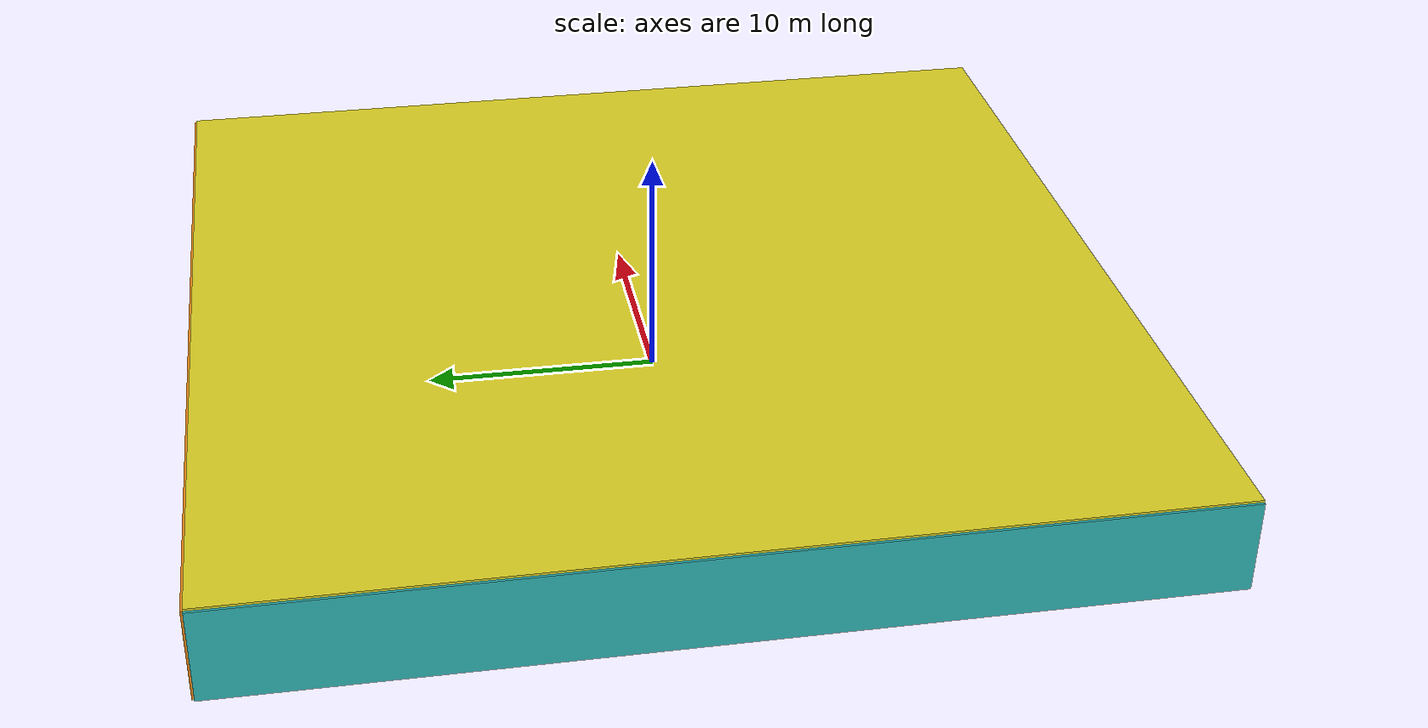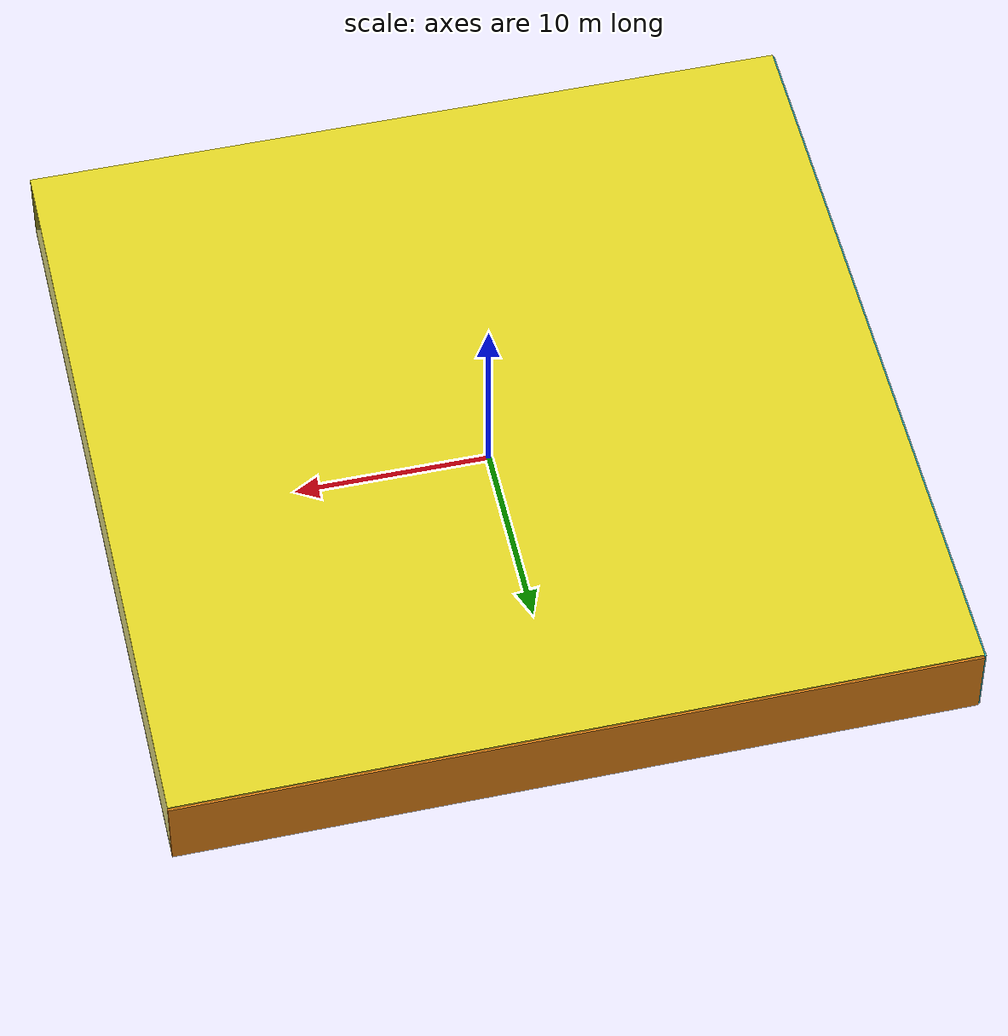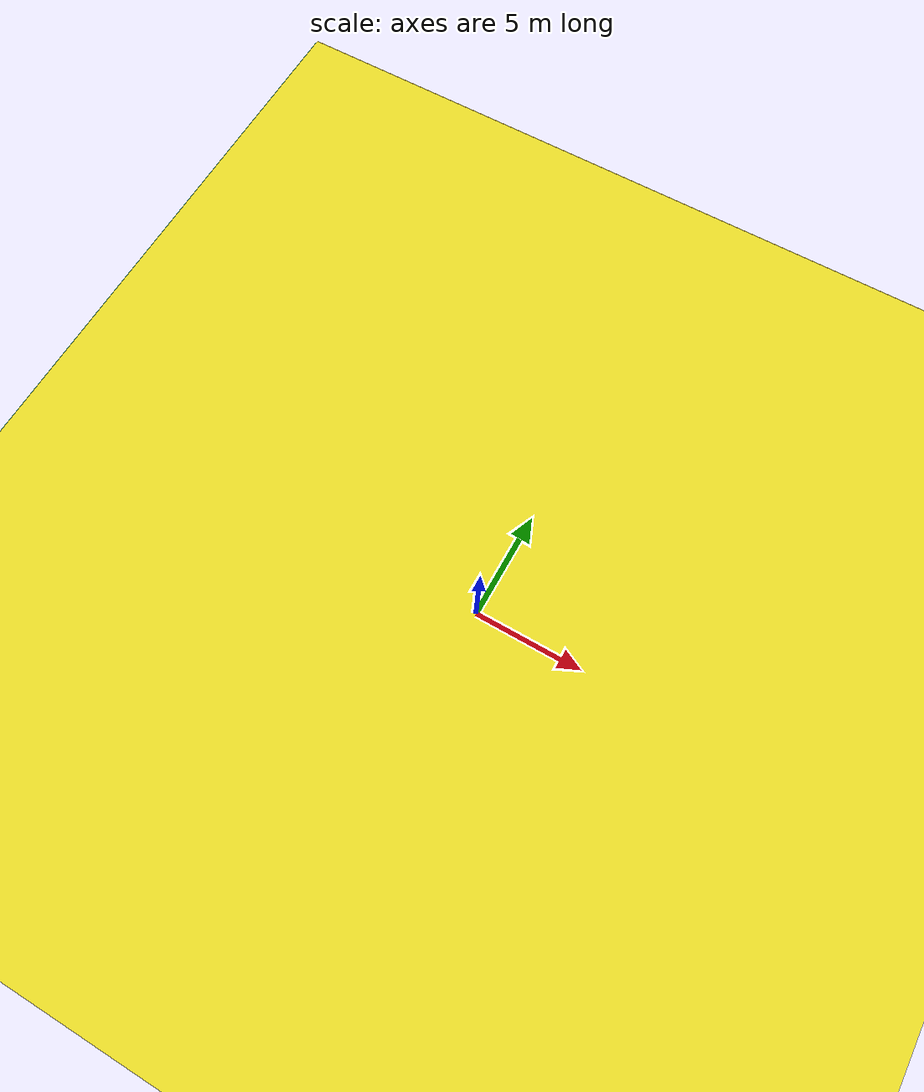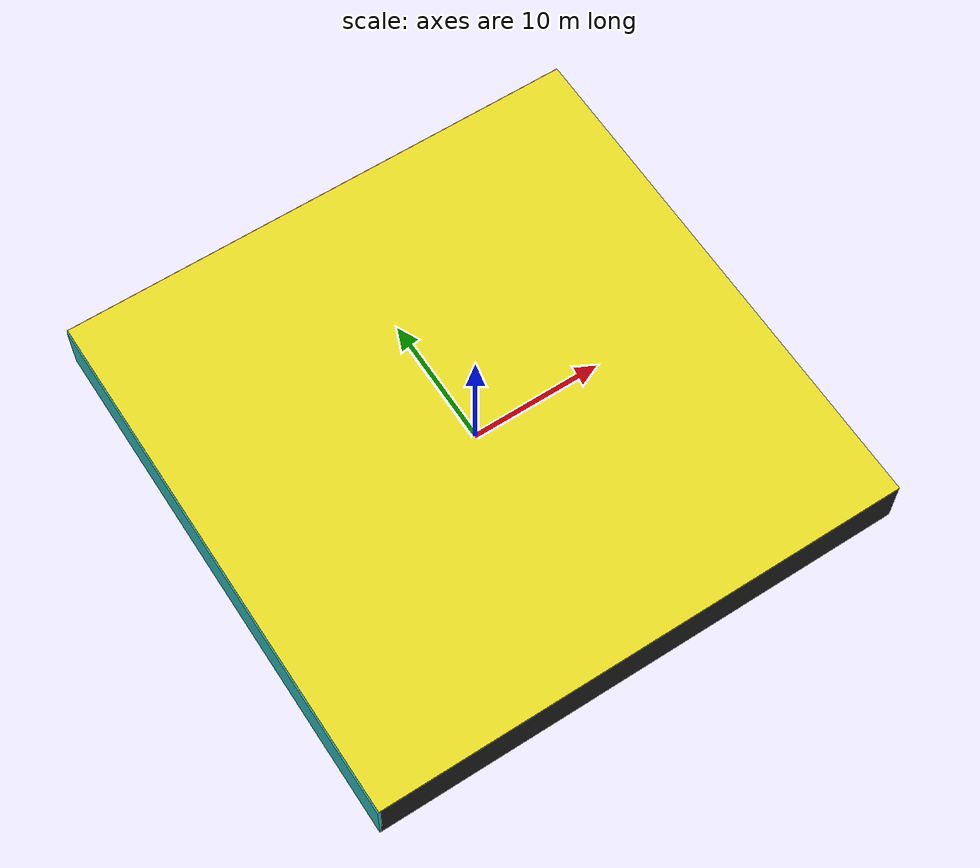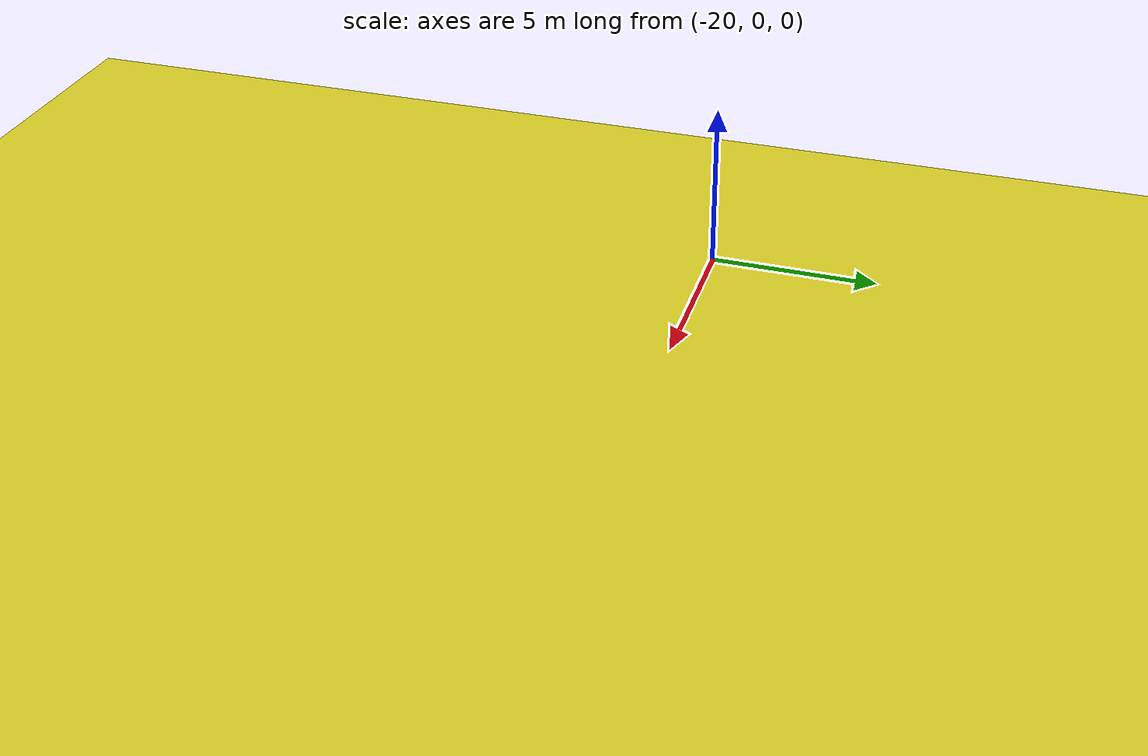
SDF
<sdf version="1.4">
 <world name="default">
  <physics type="ode">
   <max_step_size>0.001</max_step_size>
   <real_time_factor>1</real_time_factor>
   <real_time_update_rate>1000</real_time_update_rate>
   <gravity>0 0 -9.8</gravity>
  </physics>
  <scene><ambient>0.4 0.4 0.4 1</ambient><background>0.7 0.7 0.7 1</background><shadows>1</shadows></scene>
  <model name="Surrounding">
   <static>1</static>
   <link name="Ceiling">
    <collision name="Ceiling_Collision"><geometry><box><size>40 40 0.1</size></box></geometry></collision>
    <visual name="Ceiling_Visual">
     <geometry><box><size>40 40 0.1</size></box></geometry>
     <material>
      <script><uri>file://media/materials/scripts/gazebo.material</uri><name>Gazebo/Yellow</name></script>
     </material>
    </visual>
    <pose>0 0 4.05 0 0 0</pose>
   </link>
   <link name="Wall_South">
    <collision name="Wall_South_Collision">
     <geometry><box><size>40 0 4</size></box></geometry>
     <pose>0 0 2 0 -0 0</pose>
    </collision>
    <visual name="Wall_South_Visual">
     <pose>0 0 2 0 -0 0</pose>
     <geometry><box><size>40 0 4</size></box></geometry>
     <material>
      <script><uri>file://media/materials/scripts/gazebo.material</uri><name>Gazebo/Black</name></script>
     </material>
    </visual>
    <velocity_decay><linear>0</linear><angular>0</angular></velocity_decay>
    <pose>0 -20 0 0 -0 0</pose>
   </link>
   <link name="Wall_East">
    <collision name="Wall_21_Collision">
     <geometry><box><size>40 0 4</size></box></geometry>
     <pose>0 0 2 0 -0 0</pose>
    </collision>
    <visual name="Wall_21_Visual">
     <pose>0 0 2 0 -0 0</pose>
     <geometry><box><size>40 0 4</size></box></geometry>
     <material>
      <script>
       <uri>file://media/materials/scripts/gazebo.material</uri>
       <name>Gazebo/YellowTransparent</name>
      </script>
     </material>
    </visual>
    <velocity_decay><linear>0</linear><angular>0</angular></velocity_decay>
    <pose>20 0 0 0 -0 1.5708</pose>
   </link>
   <link name="Wall_North">
    <collision name="Wall_22_Collision">
     <geometry><box><size>40 0.2 4</size></box></geometry>
     <pose>0 0 2 0 -0 0</pose>
    </collision>
    <visual name="Wall_22_Visual">
     <pose>0 0 2 0 -0 0</pose>
     <geometry><box><size>40 0.2 4</size></box></geometry>
     <material>
      <script><uri>file://media/materials/scripts/gazebo.material</uri><name>Gazebo/Orange</name></script>
     </material>
    </visual>
    <velocity_decay><linear>0</linear><angular>0</angular></velocity_decay>
    <pose>0 20 0 0 -0 0</pose>
   </link>
   <link name="Wall_West">
    <collision name="Wall_23_Collision">
     <geometry><box><size>40 0.2 4</size></box></geometry>
     <pose>0 0 2 0 -0 0</pose>
    </collision>
    <visual name="Wall_23_Visual">
     <pose>0 0 2 0 -0 0</pose>
     <geometry><box><size>40 0.2 4</size></box></geometry>
     <material>
      <script><uri>file://media/materials/scripts/gazebo.material</uri><name>Gazebo/Turquoise</name></script>
     </material>
    </visual>
    <velocity_decay><linear>0</linear><angular>0</angular></velocity_decay>
    <pose>-20 0 0 0 0 -1.5708</pose>
   </link>
   <link name="Ground_link">
    <collision name="collision">
     <pose>0 0 .05 0 -0 0</pose>
     <geometry><box><size>40 40 0.1</size></box></geometry>
    </collision>
    <visual name="visual">
     <pose>0 0 .05 0 -0 0</pose>
     <geometry><box><size>40 40 0.1</size></box></geometry>
     <material>
      <script><uri>file://media/materials/scripts/gazebo.material</uri><name>Gazebo/GreyGradientSky</name></script>
     </material>
    </visual>
   </link>
   <static>1</static>
  </model>
  <spherical_coordinates>
   <surface_model>EARTH_WGS84</surface_model>
   <latitude_deg>0</latitude_deg>
   <longitude_deg>0</longitude_deg>
   <elevation>0</elevation>
   <heading_deg>0</heading_deg>
  </spherical_coordinates>
  <light name="lightball_0" type="diffuse">
   <diffuse>0.8 0.8 0.8 1</diffuse>
   <specular>0.2 0.2 0.2 1</specular>
   <attenuation>
    <range>100</range>
    <constant>0.7</constant>
    <linear>0.01</linear>
    <quadratic>0.001</quadratic>
   </attenuation>
   <direction>-0.5 0.1 -0.9</direction>
   <pose>-1.76444220645 -5.6534538311 0.617477408611 0 0 0</pose>
  </light>
  <light name="lightball_1" type="diffuse">
   <diffuse>0.8 0.8 0.8 1</diffuse>
   <specular>0.2 0.2 0.2 1</specular>
   <attenuation>
    <range>100</range>
    <constant>0.7</constant>
    <linear>0.01</linear>
    <quadratic>0.001</quadratic>
   </attenuation>
   <direction>-0.5 0.1 -0.9</direction>
   <pose>7.96330196982 -13.5430854611 3.33004421948 0 0 0</pose>
  </light>
  <light name="lightball_2" type="diffuse">
   <diffuse>0.8 0.8 0.8 1</diffuse>
   <specular>0.2 0.2 0.2 1</specular>
   <attenuation>
    <range>100</range>
    <constant>0.7</constant>
    <linear>0.01</linear>
    <quadratic>0.001</quadratic>
   </attenuation>
   <direction>-0.5 0.1 -0.9</direction>
   <pose>-18.5950862273 8.59395775394 3.04837352969 0 0 0</pose>
  </light>
  <light name="lightball_3" type="diffuse">
   <diffuse>0.8 0.8 0.8 1</diffuse>
   <specular>0.2 0.2 0.2 1</specular>
   <attenuation>
    <range>100</range>
    <constant>0.7</constant>
    <linear>0.01</linear>
    <quadratic>0.001</quadratic>
   </attenuation>
   <direction>-0.5 0.1 -0.9</direction>
   <pose>2.42578583849 -13.9259733228 1.13814075323 0 0 0</pose>
  </light>
  <light name="lightball_4" type="diffuse">
   <diffuse>0.8 0.8 0.8 1</diffuse>
   <specular>0.2 0.2 0.2 1</specular>
   <attenuation>
    <range>100</range>
    <constant>0.7</constant>
    <linear>0.01</linear>
    <quadratic>0.001</quadratic>
   </attenuation>
   <direction>-0.5 0.1 -0.9</direction>
   <pose>5.19215248226 -13.0371339637 3.66442456601 0 0 0</pose>
  </light>
  <light name="lightball_5" type="diffuse">
   <diffuse>0.8 0.8 0.8 1</diffuse>
   <specular>0.2 0.2 0.2 1</specular>
   <attenuation>
    <range>100</range>
    <constant>0.7</constant>
    <linear>0.01</linear>
    <quadratic>0.001</quadratic>
   </attenuation>
   <direction>-0.5 0.1 -0.9</direction>
   <pose>4.41724789733 -7.87665741089 0.720610740067 0 0 0</pose>
  </light>
  <light name="lightball_6" type="diffuse">
   <diffuse>0.8 0.8 0.8 1</diffuse>
   <specular>0.2 0.2 0.2 1</specular>
   <attenuation>
    <range>100</range>
    <constant>0.7</constant>
    <linear>0.01</linear>
    <quadratic>0.001</quadratic>
   </attenuation>
   <direction>-0.5 0.1 -0.9</direction>
   <pose>-10.7188613968 -9.06521711699 1.51352633297 0 0 0</pose>
  </light>
  <light name="lightball_7" type="diffuse">
   <diffuse>0.8 0.8 0.8 1</diffuse>
   <specular>0.2 0.2 0.2 1</specular>
   <attenuation>
    <range>100</range>
    <constant>0.7</constant>
    <linear>0.01</linear>
    <quadratic>0.001</quadratic>
   </attenuation>
   <direction>-0.5 0.1 -0.9</direction>
   <pose>12.3358637552 15.8460079397 3.87821203685 0 0 0</pose>
  </light>
  <light name="lightball_8" type="diffuse">
   <diffuse>0.8 0.8 0.8 1</diffuse>
   <specular>0.2 0.2 0.2 1</specular>
   <attenuation>
    <range>100</range>
    <constant>0.7</constant>
    <linear>0.01</linear>
    <quadratic>0.001</quadratic>
   </attenuation>
   <direction>-0.5 0.1 -0.9</direction>
   <pose>-4.19892445091 -12.2770114038 2.36935515098 0 0 0</pose>
  </light>
  <light name="lightball_9" type="diffuse">
   <diffuse>0.8 0.8 0.8 1</diffuse>
   <specular>0.2 0.2 0.2 1</specular>
   <attenuation>
    <range>100</range>
    <constant>0.7</constant>
    <linear>0.01</linear>
    <quadratic>0.001</quadratic>
   </attenuation>
   <direction>-0.5 0.1 -0.9</direction>
   <pose>-14.6445313542 -1.12390002583 1.9028152791 0 0 0</pose>
  </light>
  <include><uri>model://cabinet</uri><pose>-18.0287422762 -8.01065716029 0 0 0 0.225970008092</pose></include>
  <include>
   <uri>model://construction_cone</uri>
   <pose>-16.6642688034 -5.62500041435 0 0 0 1.89924688813</pose>
  </include>
  <include>
   <uri>model://robocup_3Dsim_goal</uri>
   <pose>-16.8417801773 0.536723515995 0 0 0 2.94004110075</pose>
  </include>
  <include>
   <uri>model://robocup_3Dsim_goal</uri>
   <pose>-17.706255397 4.21239671462 0 0 0 0.289947293288</pose>
  </include>
  <include>
   <uri>model://construction_cone</uri>
   <pose>-16.7615797271 6.44776206847 0 0 0 0.436634998841</pose>
  </include>
  <include><uri>model://table</uri><pose>-18.4076057705 13.1726377684 0 0 0 2.95791076341</pose></include>
  <include>
   <uri>model://textured_shapes</uri>
   <pose>-13.5995750544 -6.33388521467 0 0 0 3.09789329989</pose>
  </include>
  <include>
   <uri>model://textured_shapes</uri>
   <pose>-15.5276856339 7.46373821721 0 0 0 2.36675378243</pose>
  </include>
  <include>
   <uri>model://textured_shapes</uri>
   <pose>-10.3176918295 -11.4655970536 0 0 0 0.493224738769</pose>
  </include>
  <include>
   <uri>model://construction_cone</uri>
   <pose>-12.3212110109 15.9286726718 0 0 0 2.74281107238</pose>
  </include>
  <include><uri>model://table</uri><pose>-8.56946313817 5.58104194911 0 0 0 2.67102088607</pose></include>
  <include><uri>model://table</uri><pose>-9.15080717757 8.48781593332 0 0 0 1.62831970172</pose></include>
  <include>
   <uri>model://textured_shapes</uri>
   <pose>-5.23374959962 -2.45349870434 0 0 0 1.9598602776</pose>
  </include>
  <include><uri>model://cabinet</uri><pose>-5.09663924109 8.75387440353 0 0 0 1.76356704062</pose></include>
  <include>
   <uri>model://robocup_3Dsim_goal</uri>
   <pose>-3.66427520237 -6.31462528178 0 0 0 2.44762565491</pose>
  </include>
  <include>
   <uri>model://textured_shapes</uri>
   <pose>0.340411774433 0.380586890389 0 0 0 1.93315608106</pose>
  </include>
  <include><uri>model://cabinet</uri><pose>0.744508417818 16.3741328513 0 0 0 0.508585862353</pose></include>
  <include>
   <uri>model://textured_shapes</uri>
   <pose>-0.418390356216 17.9646655679 0 0 0 0.930616825367</pose>
  </include>
  <include>
   <uri>model://construction_cone</uri>
   <pose>7.27903118977 -7.86790581204 0 0 0 2.63437811812</pose>
  </include>
  <include>
   <uri>model://robocup_3Dsim_goal</uri>
   <pose>7.1248178023 -3.26191326025 0 0 0 1.445003265</pose>
  </include>
  <include>
   <uri>model://robocup_3Dsim_goal</uri>
   <pose>6.2638310243 4.69493561309 0 0 0 0.929206491811</pose>
  </include>
  <include><uri>model://cabinet</uri><pose>10.4869636204 2.61501974512 0 0 0 1.36037210471</pose></include>
  <include>
   <uri>model://robocup_3Dsim_goal</uri>
   <pose>9.00935591694 18.2779720731 0 0 0 0.0432909405613</pose>
  </include>
  <include>
   <uri>model://construction_cone</uri>
   <pose>15.4259609595 10.2934334513 0 0 0 1.10355924111</pose>
  </include>
  <include><uri>model://table</uri><pose>15.1668452162 19.065088951 0 0 0 2.07443536751</pose></include>
 </world>
</sdf>

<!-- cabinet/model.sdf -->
<sdf version="1.5">
  <model name="cabinet">
    <static>true</static>
    <link name="cabinet_bottom_plate">
      <inertial>
        <pose>0 0 -1 0 0 0</pose>
        <inertia>
          <ixx>2.050000</ixx>
          <ixy>0</ixy>
          <ixz>0</ixz>
          <iyy>2.050000</iyy>
          <iyz>0</iyz>
          <izz>2.050000</izz>
        </inertia>
        <mass>25.000000</mass>
      </inertial>
      <collision name="cabinet_bottom_plate_geom">
        <pose>0 0 0.010000 0 0 0</pose>
        <geometry>
          <box>
            <size>0.450000 0.450000 0.020000</size>
          </box>
        </geometry>
      </collision>
      <visual name="cabinet_bottom_plate_geom_visual">
        <pose>0 0 0.010000 0 0 0</pose>
        <geometry>
          <box>
            <size>0.450000 0.450000 0.020000</size>
          </box>
        </geometry>
        <material>
          <script>
            <uri>model://media/materials/scripts/gazebo.material</uri>
            <name>Gazebo/Wood</name>
          </script>
        </material>
      </visual>
      <collision name="cabinet_bottom_plate_geom_cabinet_back_plate">
        <pose>0.235000 0 0.510000 0 0 0</pose>
        <geometry>
          <box>
            <size>0.020000 0.450000 1.020000</size>
          </box>
        </geometry>
      </collision>
      <visual name="cabinet_bottom_plate_geom_cabinet_back_plate_visual">
        <pose>0.235000 0 0.510000 0 0 0</pose>
        <geometry>
          <box>
            <size>0.020000 0.450000 1.020000</size>
          </box>
        </geometry>
        <material>
          <script>
            <uri>model://media/materials/scripts/gazebo.material</uri>
            <name>Gazebo/Wood</name>
          </script>
        </material>
      </visual>
      <collision name="cabinet_bottom_plate_geom_cabinet_left_plate">
        <pose>0 0.235000 0.510000 0 0 0</pose>
        <geometry>
          <box>
            <size>0.450000 0.020000 1.020000</size>
          </box>
        </geometry>
      </collision>
      <visual name="cabinet_bottom_plate_geom_cabinet_left_plate_visual">
        <pose>0 0.235000 0.510000 0 0 0</pose>
        <geometry>
          <box>
            <size>0.450000 0.020000 1.020000</size>
          </box>
        </geometry>
        <material>
          <script>
            <uri>model://media/materials/scripts/gazebo.material</uri>
            <name>Gazebo/Wood</name>
          </script>
        </material>
      </visual>
      <collision name="cabinet_bottom_plate_geom_cabinet_middle_plate">
        <pose>0 0 0.510000 0 0 0</pose>
        <geometry>
          <box>
            <size>0.450000 0.450000 0.020000</size>
          </box>
        </geometry>
      </collision>
      <visual name="cabinet_bottom_plate_geom_cabinet_middle_plate_visual">
        <pose>0 0 0.510000 0 0 0</pose>
        <geometry>
          <box>
            <size>0.450000 0.450000 0.020000</size>
          </box>
        </geometry>
        <material>
          <script>
            <uri>model://media/materials/scripts/gazebo.material</uri>
            <name>Gazebo/Wood</name>
          </script>
        </material>
      </visual>
      <collision name="cabinet_bottom_plate_geom_cabinet_right_plate">
        <pose>0 -0.235000 0.510000 0 0 0</pose>
        <geometry>
          <box>
            <size>0.450000 0.020000 1.020000</size>
          </box>
        </geometry>
      </collision>
      <visual name="cabinet_bottom_plate_geom_cabinet_right_plate_visual">
        <pose>0 -0.235000 0.510000 0 0 0</pose>
        <geometry>
          <box>
            <size>0.450000 0.020000 1.020000</size>
          </box>
        </geometry>
        <material>
          <script>
            <uri>model://media/materials/scripts/gazebo.material</uri>
            <name>Gazebo/Wood</name>
          </script>
        </material>
      </visual>
      <collision name="cabinet_bottom_plate_geom_cabinet_top_plate">
        <pose>0 0 1.010000 0 0 0</pose>
        <geometry>
          <box>
            <size>0.450000 0.450000 0.020000</size>
          </box>
        </geometry>
      </collision>
      <visual name="cabinet_bottom_plate_geom_cabinet_top_plate_visual">
        <pose>0 0 1.010000 0 0 0</pose>
        <geometry>
          <box>
            <size>0.450000 0.450000 0.020000</size>
          </box>
        </geometry>
        <material>
          <script>
            <uri>model://media/materials/scripts/gazebo.material</uri>
            <name>Gazebo/Wood</name>
          </script>
        </material>
      </visual>
    </link>
  </model>
</sdf>

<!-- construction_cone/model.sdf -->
<sdf version="1.5">
  <model name="Construction Cone">
    <link name="link">
      <collision name="collision">
        <geometry>
          <mesh>
            <scale>10 10 10</scale>
            <uri>file://isr-testbed/construction_cone/meshes/construction_cone.dae</uri>
          </mesh>
        </geometry>
      </collision>
      <visual name="visual">
        <geometry>
          <mesh>
            <scale>10 10 10</scale>
            <uri>file://isr-testbed/construction_cone/meshes/construction_cone.dae</uri>
          </mesh>
        </geometry>
      </visual>
    </link>
  </model>
</sdf>

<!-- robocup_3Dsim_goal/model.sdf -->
<sdf version="1.5">
  <model name="robocup_3d_goal">
    <static>true</static>
    <link name="left_post">
      <pose>0 1.05 0.45 0 0 0</pose>
      <collision name="collision">
        <geometry>
          <cylinder>
            <radius>0.05</radius>
            <length>0.9</length>
          </cylinder>
        </geometry>
      </collision>
      <visual name="visual">
        <geometry>
          <cylinder>
            <radius>0.05</radius>
            <length>0.9</length>
          </cylinder>
        </geometry>
        <material>
          <script>
            <uri>file://media/materials/scripts/gazebo.material</uri>
            <name>Gazebo/ZincYellow</name>
          </script>
        </material>
      </visual>
    </link>
    <link name="left_support_horiz_lower">
      <pose>0.30 1.05 0.01 0 0 0</pose>
      <collision name="collision">
        <geometry>
          <box>
            <size>0.50 0.02 0.02</size>
          </box>
        </geometry>
      </collision>
      <visual name="visual">
        <geometry>
          <box>
            <size>0.50 0.02 0.02</size>
          </box>
        </geometry>
        <material>
          <script>
            <uri>file://media/materials/scripts/gazebo.material</uri>
            <name>Gazebo/White</name>
          </script>
        </material>
      </visual>
    </link>
    <link name="left_support_horiz_upper">
      <pose>0.30 1.05 0.79 0 0 0</pose>
      <collision name="collision">
        <geometry>
          <box>
            <size>0.50 0.02 0.02</size>
          </box>
        </geometry>
      </collision>
      <visual name="visual">
        <geometry>
          <box>
            <size>0.50 0.02 0.02</size>
          </box>
        </geometry>
        <material>
          <script>
            <uri>file://media/materials/scripts/gazebo.material</uri>
            <name>Gazebo/White</name>
          </script>
        </material>
      </visual>
    </link>
    <link name="left_support_vertical">
      <pose>0.56 1.05 0.4 0 1.5708 0</pose>
      <collision name="collision">
        <geometry>
          <box>
            <size>0.80 0.02 0.02</size>
          </box>
        </geometry>
      </collision>
      <visual name="visual">
        <geometry>
          <box>
            <size>0.80 0.02 0.02</size>
          </box>
        </geometry>
        <material>
          <script>
            <uri>file://media/materials/scripts/gazebo.material</uri>
            <name>Gazebo/White</name>
          </script>
        </material>
      </visual>
    </link>
    <link name="right_support_horiz_lower">
      <pose>0.30 -1.05 0.01 0 0 0</pose>
      <collision name="collision">
        <geometry>
          <box>
            <size>0.50 0.02 0.02</size>
          </box>
        </geometry>
      </collision>
      <visual name="visual">
        <geometry>
          <box>
            <size>0.50 0.02 0.02</size>
          </box>
        </geometry>
        <material>
          <script>
            <uri>file://media/materials/scripts/gazebo.material</uri>
            <name>Gazebo/White</name>
          </script>
        </material>
      </visual>
    </link>
    <link name="right_support_horiz_upper">
      <pose>0.30 -1.05 0.79 0 0 0</pose>
      <collision name="collision">
        <geometry>
          <box>
            <size>0.50 0.02 0.02</size>
          </box>
        </geometry>
      </collision>
      <visual name="visual">
        <geometry>
          <box>
            <size>0.50 0.02 0.02</size>
          </box>
        </geometry>
        <material>
          <script>
            <uri>file://media/materials/scripts/gazebo.material</uri>
            <name>Gazebo/White</name>
          </script>
        </material>
      </visual>
    </link>
    <link name="right_support_vertical">
      <pose>0.56 -1.05 0.4 0 1.5708 0</pose>
      <collision name="collision">
        <geometry>
          <box>
            <size>0.80 0.02 0.02</size>
          </box>
        </geometry>
      </collision>
      <visual name="visual">
        <geometry>
          <box>
            <size>0.80 0.02 0.02</size>
          </box>
        </geometry>
        <material>
          <script>
            <uri>file://media/materials/scripts/gazebo.material</uri>
            <name>Gazebo/White</name>
          </script>
        </material>
      </visual>
    </link>
    <link name="center_support_horiz_lower">
      <pose>0.56 0 0.01 0 1.5708 0</pose>
      <collision name="collision">
        <geometry>
          <box>
            <size>0.02 2.08 0.02</size>
          </box>
        </geometry>
      </collision>
      <visual name="visual">
        <geometry>
          <box>
            <size>0.02 2.08 0.02</size>
          </box>
        </geometry>
        <material>
          <script>
            <uri>file://media/materials/scripts/gazebo.material</uri>
            <name>Gazebo/White</name>
          </script>
        </material>
      </visual>
    </link>
    <link name="center_support_horiz_upper">
      <pose>0.56 0 0.79 0 1.5708 0</pose>
      <collision name="collision">
        <geometry>
          <box>
            <size>0.02 2.08 0.02</size>
          </box>
        </geometry>
      </collision>
      <visual name="visual">
        <geometry>
          <box>
            <size>0.02 2.08 0.02</size>
          </box>
        </geometry>
        <material>
          <script>
            <uri>file://media/materials/scripts/gazebo.material</uri>
            <name>Gazebo/White</name>
          </script>
        </material>
      </visual>
    </link>
    <link name="right_post">
      <pose>0 -1.05 0.45 0 0 0</pose>
      <collision name="collision">
        <geometry>
          <cylinder>
            <radius>0.05</radius>
            <length>0.9</length>
          </cylinder>
        </geometry>
      </collision>
      <visual name="visual">
        <geometry>
          <cylinder>
            <radius>0.05</radius>
            <length>0.9</length>
          </cylinder>
        </geometry>
        <material>
          <script>
            <uri>file://media/materials/scripts/gazebo.material</uri>
            <name>Gazebo/ZincYellow</name>
          </script>
        </material>
      </visual>
    </link>
    <link name="crossbar">
      <pose>0 0 0.85 1.57 1.57 0</pose>
      <collision name="collision">
        <geometry>
          <cylinder>
            <radius>0.05</radius>
            <length>2.0</length>
          </cylinder>
        </geometry>
      </collision>
      <visual name="visual">
        <geometry>
          <cylinder>
            <radius>0.05</radius>
            <length>2.0</length>
          </cylinder>
        </geometry>
        <material>
          <script>
            <uri>file://media/materials/scripts/gazebo.material</uri>
            <name>Gazebo/ZincYellow</name>
          </script>
        </material>
      </visual>
    </link>
    <link name="center_net">
      <pose>0.56 0 0.40 0 0 0</pose>
      <collision name="collision">
        <geometry>
          <box>
            <size>0.01 2.1 0.80</size>
          </box>
        </geometry>
      </collision>
      <visual name="visual">
        <geometry>
          <box>
            <size>0.01 2.1 0.80</size>
          </box>
        </geometry>
        <material>
          <script>
            <uri>model://../model_source/models/robocup09_spl_field/materials/scripts/</uri>
            <uri>model://../model_source/models/robocup09_spl_field/materials/textures/</uri>
            <name>RoboCup/Net</name>
          </script>
        </material>
      </visual>
    </link>
    <link name="left_net">
      <pose>0.30 1.05 0.40 0 0 0</pose>
      <collision name="collision">
        <geometry>
          <box>
            <size>0.50 0.01 0.76</size>
          </box>
        </geometry>
      </collision>
      <visual name="visual">
        <geometry>
          <box>
            <size>0.50 0.01 0.76</size>
          </box>
        </geometry>
        <material>
          <script>
            <uri>model://../model_source/models/robocup09_spl_field/materials/scripts/</uri>
            <uri>model://../model_source/models/robocup09_spl_field/materials/textures/</uri>
            <name>RoboCup/Net</name>
          </script>
        </material>
      </visual>
    </link>
    <link name="right_net">
      <pose>0.30 -1.05 0.40 0 0 0</pose>
      <collision name="collision">
        <geometry>
          <box>
            <size>0.50 0.01 0.76</size>
          </box>
        </geometry>
      </collision>
      <visual name="visual">
        <geometry>
          <box>
            <size>0.50 0.01 0.76</size>
          </box>
        </geometry>
        <material>
          <script>
            <uri>model://../model_source/models/robocup09_spl_field/materials/scripts/</uri>
            <uri>model://../model_source/models/robocup09_spl_field/materials/textures/</uri>
            <name>RoboCup/Net</name>
          </script>
        </material>
      </visual>
    </link>
  </model>
</sdf>

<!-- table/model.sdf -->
<sdf version="1.5">
  <model name="table">
    <static>true</static>
    <link name="link">
      <collision name="surface">
        <pose>0 0 1.0 0 0 0</pose>
        <geometry>
          <box>
            <size>1.5 0.8 0.03</size>
          </box>
        </geometry>
        <surface>
          <friction>
            <ode>
              <mu>0.6</mu>
              <mu2>0.6</mu2>
            </ode>
          </friction>
        </surface>
      </collision>
      <visual name="visual1">
        <pose>0 0 1.0 0 0 0</pose>
        <geometry>
          <box>
            <size>1.5 0.8 0.03</size>
          </box>
        </geometry>
        <material>
          <script>
            <uri>model://media/materials/scripts/gazebo.material</uri>
            <name>Gazebo/Wood</name>
          </script>
        </material>
      </visual>
      <collision name="front_left_leg">
        <pose>0.68 0.38 0.5 0 0 0</pose>
        <geometry>
          <cylinder>
            <radius>0.02</radius>
            <length>1.0</length>
          </cylinder>
        </geometry>
      </collision>
      <visual name="front_left_leg">
        <pose>0.68 0.38 0.5 0 0 0</pose>
        <geometry>
          <cylinder>
            <radius>0.02</radius>
            <length>1.0</length>
          </cylinder>
        </geometry>
        <material>
          <script>
            <uri>model://media/materials/scripts/gazebo.material</uri>
            <name>Gazebo/Grey</name>
          </script>
        </material>
      </visual>
      <collision name="front_right_leg">
        <pose>0.68 -0.38 0.5 0 0 0</pose>
        <geometry>
          <cylinder>
            <radius>0.02</radius>
            <length>1.0</length>
          </cylinder>
        </geometry>
      </collision>
      <visual name="front_right_leg">
        <pose>0.68 -0.38 0.5 0 0 0</pose>
        <geometry>
          <cylinder>
            <radius>0.02</radius>
            <length>1.0</length>
          </cylinder>
        </geometry>
        <material>
          <script>
            <uri>model://media/materials/scripts/gazebo.material</uri>
            <name>Gazebo/Grey</name>
          </script>
        </material>
      </visual>
      <collision name="back_right_leg">
        <pose>-0.68 -0.38 0.5 0 0 0</pose>
        <geometry>
          <cylinder>
            <radius>0.02</radius>
            <length>1.0</length>
          </cylinder>
        </geometry>
      </collision>
      <visual name="back_right_leg">
        <pose>-0.68 -0.38 0.5 0 0 0</pose>
        <geometry>
          <cylinder>
            <radius>0.02</radius>
            <length>1.0</length>
          </cylinder>
        </geometry>
        <material>
          <script>
            <uri>model://media/materials/scripts/gazebo.material</uri>
            <name>Gazebo/Grey</name>
          </script>
        </material>
      </visual>
      <collision name="back_left_leg">
        <pose>-0.68 0.38 0.5 0 0 0</pose>
        <geometry>
          <cylinder>
            <radius>0.02</radius>
            <length>1.0</length>
          </cylinder>
        </geometry>
      </collision>
      <visual name="back_left_leg">
        <pose>-0.68 0.38 0.5 0 0 0</pose>
        <geometry>
          <cylinder>
            <radius>0.02</radius>
            <length>1.0</length>
          </cylinder>
        </geometry>
        <material>
          <script>
            <uri>model://media/materials/scripts/gazebo.material</uri>
            <name>Gazebo/Grey</name>
          </script>
        </material>
      </visual>
    </link>
  </model>
</sdf>

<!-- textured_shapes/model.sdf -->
<sdf version="1.6">
  <model name="textured_shapes">
    <pose>0 0 0.5 0 0 0</pose>
    <link name="box">
      <pose>0 -1.5 0 0 0 0</pose>
      <collision name="collision">
        <geometry>
          <box>
            <size>1 1 1</size>
          </box>
        </geometry>
      </collision>
      <visual name="visual">
        <geometry>
          <box>
            <size>1 1 1</size>
          </box>
        </geometry>
        <material>
          <script>
            <uri>model://../model_source/models/textured_shapes/materials/scripts</uri>
            <uri>model://../model_source/models/textured_shapes/materials/textures</uri>
            <name>TexturedShape/Squares</name>
          </script>
        </material>
      </visual>
    </link>
    <link name="sphere">
      <collision name="collision">
        <geometry>
          <sphere>
            <radius>0.5</radius>
          </sphere>
        </geometry>
      </collision>
      <visual name="visual">
        <geometry>
          <sphere>
            <radius>0.5</radius>
          </sphere>
        </geometry>
        <material>
          <script>
            <uri>model://../model_source/models/textured_shapes/materials/scripts</uri>
            <uri>model://../model_source/models/textured_shapes/materials/textures</uri>
            <name>TexturedShape/Squares</name>
          </script>
        </material>
      </visual>
    </link>
    <link name="cylinder">
      <pose>0 1.5 0 0 0 0</pose>
      <collision name="collision">
        <geometry>
          <cylinder>
            <radius>0.5</radius>
            <length>1</length>
          </cylinder>
        </geometry>
      </collision>
      <visual name="visual">
        <geometry>
          <cylinder>
            <radius>0.5</radius>
            <length>1</length>
          </cylinder>
        </geometry>
        <material>
          <script>
            <uri>model://../model_source/models/textured_shapes/materials/scripts</uri>
            <uri>model://../model_source/models/textured_shapes/materials/textures</uri>
            <name>TexturedShape/Squares</name>
          </script>
        </material>
      </visual>
    </link>
  </model>
</sdf>
